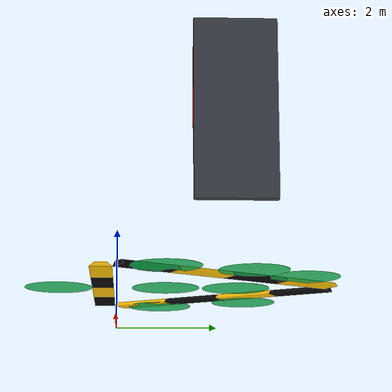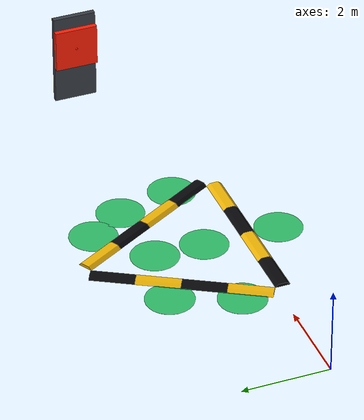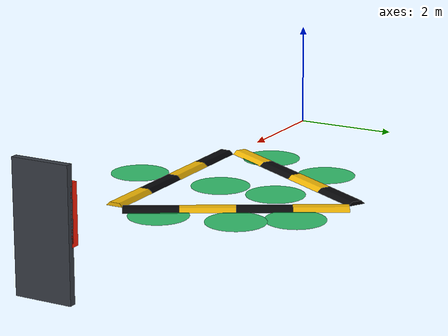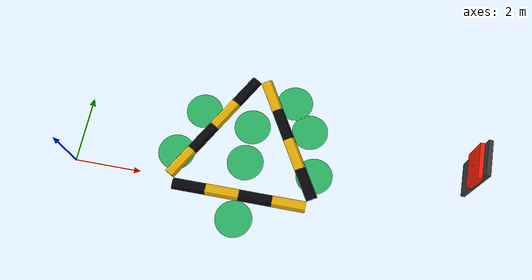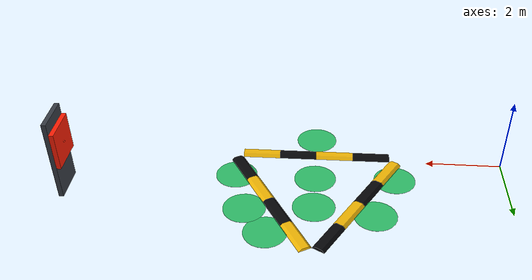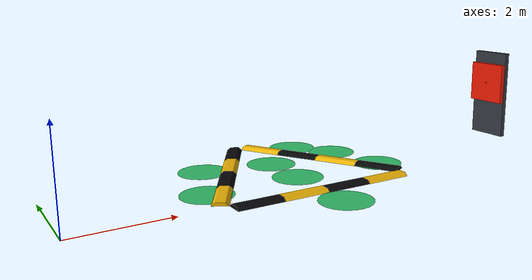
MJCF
<mujoco model="t800_competition">

  <asset>
    <mesh name="t800_speed_bump_segment" file="speed_bump_segment.obj"/>
    <material name="t800_speed_bump_yellow" rgba="0.95 0.72 0.02 1"/>
    <material name="t800_speed_bump_black" rgba="0.03 0.03 0.04 1"/>
    <material name="t800_arrival_point" rgba="0.10 0.75 0.35 0.85"/>
    <material name="t800_punch_target" rgba="1.0 0.12 0.02 1" emission="0.12"/>
    <material name="t800_punch_backboard" rgba="0.22 0.24 0.27 1"/>
  </asset>

  <worldbody>
    <!-- Keep the world origin as a flat, isolated suspension/start zone. The
         competition layout begins 5 m to the east of that zone. -->
    <body name="t800_competition_layout" pos="5.0 0 0">
      <!-- Base side: inner edge A(-2,0) -> B(2,0), outward is -Y. -->
      <body name="t800_speed_bump_side_base" pos="0 0 0" quat="0 0 0 1">
        <geom name="t800_speed_bump_base_01" type="mesh" mesh="t800_speed_bump_segment" material="t800_speed_bump_yellow" pos="-1.5 0 0"/>
        <geom name="t800_speed_bump_base_02" type="mesh" mesh="t800_speed_bump_segment" material="t800_speed_bump_black" pos="-0.5 0 0"/>
        <geom name="t800_speed_bump_base_03" type="mesh" mesh="t800_speed_bump_segment" material="t800_speed_bump_yellow" pos="0.5 0 0"/>
        <geom name="t800_speed_bump_base_04" type="mesh" mesh="t800_speed_bump_segment" material="t800_speed_bump_black" pos="1.5 0 0"/>
      </body>

      <!-- Left side: inner edge A(-2,0) -> C(0,3.4641), outward is (-sqrt(3)/2, 1/2). -->
      <body name="t800_speed_bump_side_left" pos="-1 1.7320508 0" quat="0.8660254 0 0 0.5">
        <geom name="t800_speed_bump_left_01" type="mesh" mesh="t800_speed_bump_segment" material="t800_speed_bump_yellow" pos="-1.5 0 0"/>
        <geom name="t800_speed_bump_left_02" type="mesh" mesh="t800_speed_bump_segment" material="t800_speed_bump_black" pos="-0.5 0 0"/>
        <geom name="t800_speed_bump_left_03" type="mesh" mesh="t800_speed_bump_segment" material="t800_speed_bump_yellow" pos="0.5 0 0"/>
        <geom name="t800_speed_bump_left_04" type="mesh" mesh="t800_speed_bump_segment" material="t800_speed_bump_black" pos="1.5 0 0"/>
      </body>

      <!-- Right side: inner edge C(0,3.4641) -> B(2,0), outward is (sqrt(3)/2, 1/2). -->
      <body name="t800_speed_bump_side_right" pos="1 1.7320508 0" quat="0.8660254 0 0 -0.5">
        <geom name="t800_speed_bump_right_01" type="mesh" mesh="t800_speed_bump_segment" material="t800_speed_bump_yellow" pos="-1.5 0 0"/>
        <geom name="t800_speed_bump_right_02" type="mesh" mesh="t800_speed_bump_segment" material="t800_speed_bump_black" pos="-0.5 0 0"/>
        <geom name="t800_speed_bump_right_03" type="mesh" mesh="t800_speed_bump_segment" material="t800_speed_bump_yellow" pos="0.5 0 0"/>
        <geom name="t800_speed_bump_right_04" type="mesh" mesh="t800_speed_bump_segment" material="t800_speed_bump_black" pos="1.5 0 0"/>
      </body>

      <!-- Eight 1.1 m diameter, non-colliding arrival regions. Their geom names
           are stable hooks for a later route/progress detector. -->
      <geom name="t800_arrival_point_01" type="cylinder" pos="-1.55 2.25 0.004" size="0.55 0.004" material="t800_arrival_point" contype="0" conaffinity="0"/>
      <geom name="t800_arrival_point_02" type="cylinder" pos="0 -0.90 0.004" size="0.55 0.004" material="t800_arrival_point" contype="0" conaffinity="0"/>
      <geom name="t800_arrival_point_03" type="cylinder" pos="0 2.00 0.004" size="0.55 0.004" material="t800_arrival_point" contype="0" conaffinity="0"/>
      <geom name="t800_arrival_point_04" type="cylinder" pos="-2.10 0.80 0.004" size="0.55 0.004" material="t800_arrival_point" contype="0" conaffinity="0"/>
      <geom name="t800_arrival_point_05" type="cylinder" pos="2.10 0.80 0.004" size="0.55 0.004" material="t800_arrival_point" contype="0" conaffinity="0"/>
      <geom name="t800_arrival_point_06" type="cylinder" pos="1.15 3.00 0.004" size="0.55 0.004" material="t800_arrival_point" contype="0" conaffinity="0"/>
      <geom name="t800_arrival_point_07" type="cylinder" pos="0 0.85 0.004" size="0.55 0.004" material="t800_arrival_point" contype="0" conaffinity="0"/>
      <geom name="t800_arrival_point_08" type="cylinder" pos="1.75 2.15 0.004" size="0.55 0.004" material="t800_arrival_point" contype="0" conaffinity="0"/>

      <!-- Static punching board, now about twice as far from the triangle as
           in the original layout. The support is vertical, not diagonal. -->
      <!-- Move the target 1 m toward the triangle, to world x=11.5 m. -->
      <body name="t800_punch_target_assembly" pos="6.5 1.5 0">
        <!-- 1.0 m wide x 2.2 m high vertical support plate. Thickness is a
             simulation placeholder because the reference image omits depth. -->
        <geom name="t800_punch_backboard" type="box" pos="0 0 1.1" size="0.06 0.5 1.1" material="t800_punch_backboard"/>
        <!-- 1.0 m x 1.0 m target, bottom 0.9 m and center 1.4 m above floor. -->
        <geom name="t800_punch_target" type="box" pos="-0.10 0 1.4" size="0.08 0.5 0.5" material="t800_punch_target"/>
        <site name="t800_punch_target_center" type="sphere" pos="-0.19 0 1.4" size="0.025" rgba="1 0.15 0.05 1"/>
      </body>
    </body>
  </worldbody>

</mujoco>
